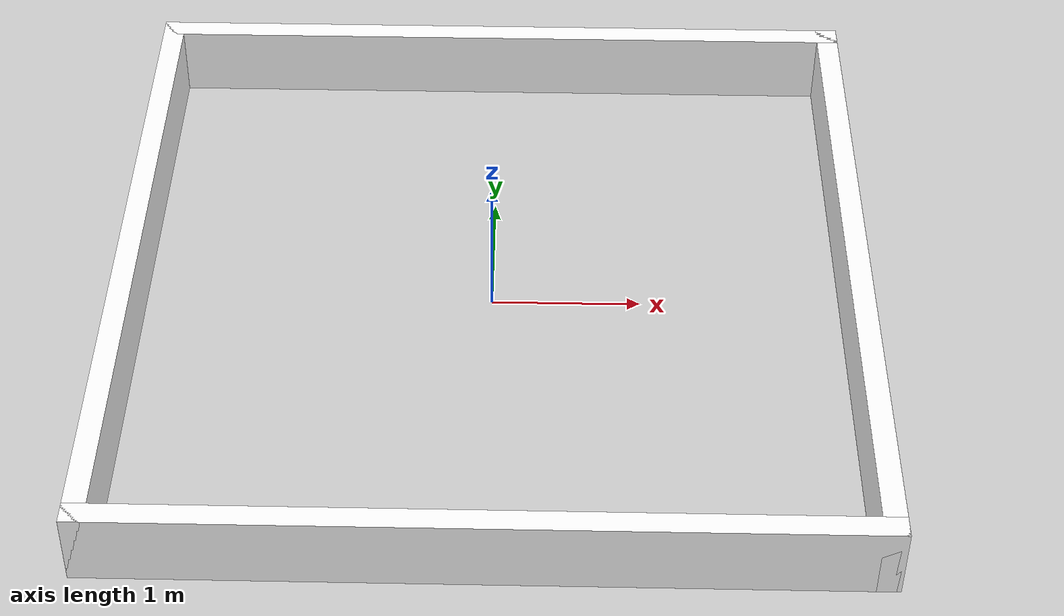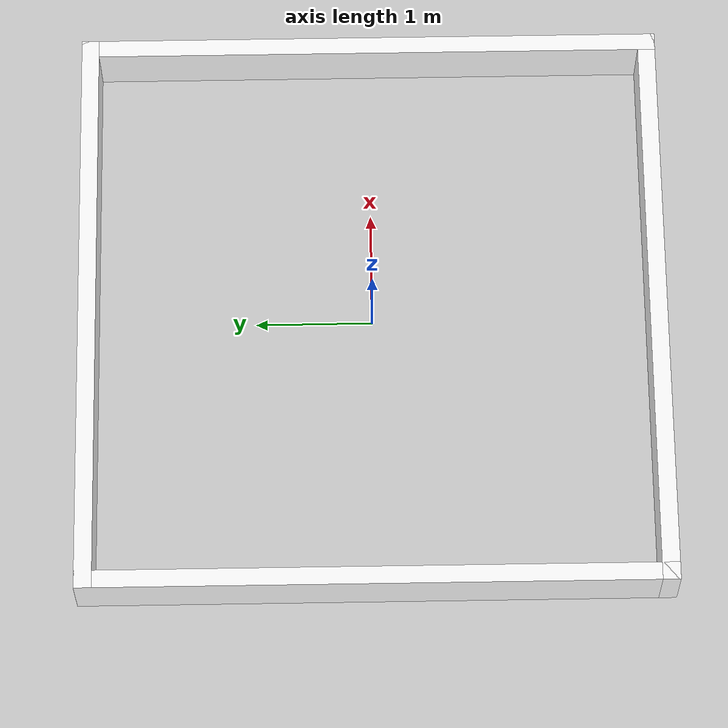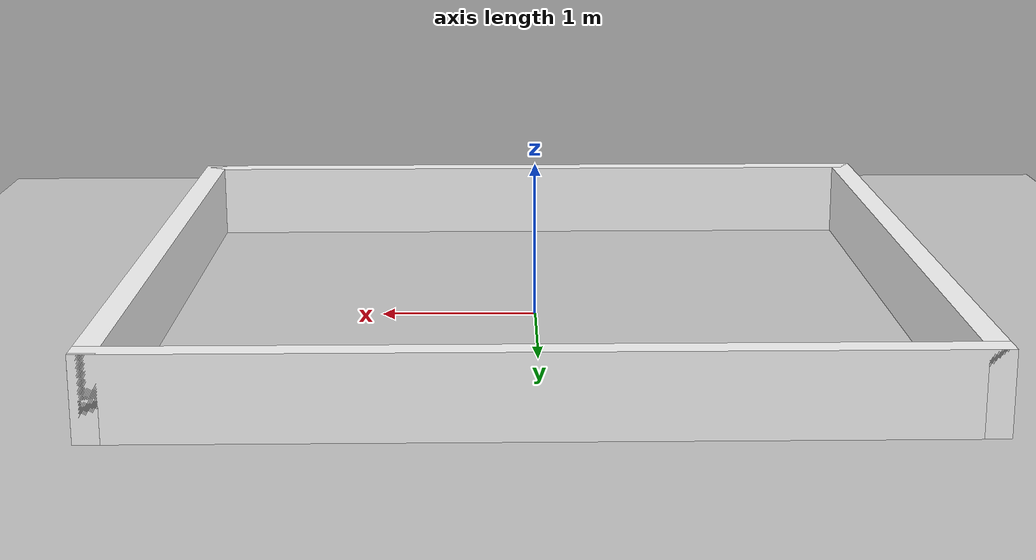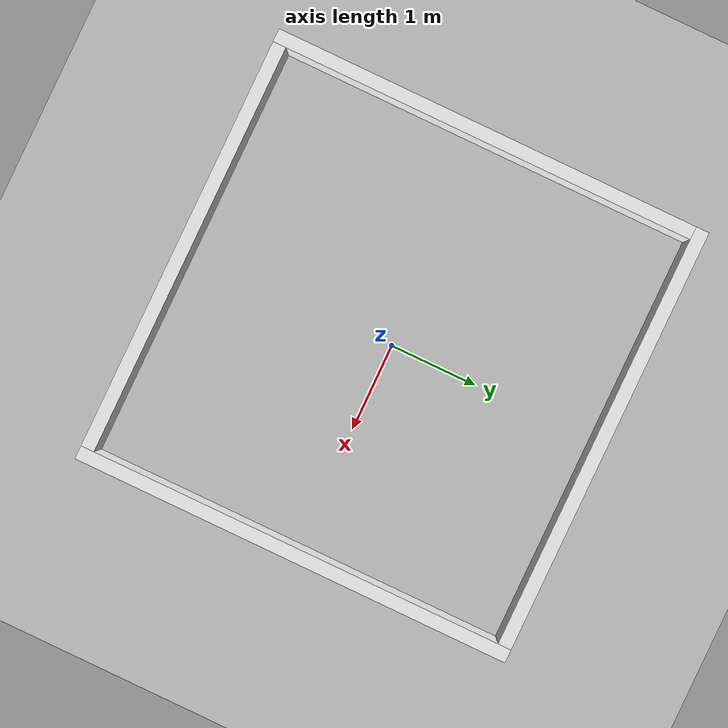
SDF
<?xml version="1.0"?>
<sdf version="1.8">
  <world name="dqn">

    <plugin
      filename="gz-sim-physics-system"
      name="gz::sim::systems::Physics">
    </plugin>
    <plugin
      filename="gz-sim-user-commands-system"
      name="gz::sim::systems::UserCommands">
    </plugin>
    <plugin
      filename="gz-sim-scene-broadcaster-system"
      name="gz::sim::systems::SceneBroadcaster">
    </plugin>
    <plugin
      filename="gz-sim-sensors-system"
      name="gz::sim::systems::Sensors">
      <render_engine>ogre2</render_engine>
    </plugin>

    <physics type="ode">
      <real_time_update_rate>1000.0</real_time_update_rate>
      <max_step_size>0.001</max_step_size>
      <real_time_factor>1</real_time_factor>
      <ode>
        <solver>
          <type>quick</type>
          <iters>150</iters>
          <precon_iters>0</precon_iters>
          <sor>1.400000</sor>
          <use_dynamic_moi_rescaling>1</use_dynamic_moi_rescaling>
        </solver>
        <constraints>
          <cfm>0.00001</cfm>
          <erp>0.2</erp>
          <contact_max_correcting_vel>2000.000000</contact_max_correcting_vel>
          <contact_surface_layer>0.01000</contact_surface_layer>
        </constraints>
      </ode>
    </physics>

    <include>
      <uri>https://fuel.gazebosim.org/1.0/OpenRobotics/models/Ground Plane</uri>
    </include>
    <light type="directional" name="sun">
      <cast_shadows>false</cast_shadows>
      <pose>0 0 10 0 0 0</pose>
      <diffuse>0.8 0.8 0.8 1</diffuse>
      <specular>0.2 0.2 0.2 1</specular>
      <attenuation>
        <range>1000</range>
        <constant>0.9</constant>
        <linear>0.01</linear>
        <quadratic>0.001</quadratic>
      </attenuation>
      <direction>-0.5 0.1 -0.9</direction>
    </light>

      <model name="turtlebot3_dqn_world">
        <static>true</static>
        <include>
          <uri>model://turtlebot3_dqn_world</uri>
        </include>
      </model>

  </world>
</sdf>

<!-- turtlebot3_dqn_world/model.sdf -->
<sdf version='1.8'>
  <model name='turtlebot3_square'>
    <pose>0 0 0 0 0 0</pose>
    <static>true</static>

    <link name='Wall_1'>
      <pose>2.425 0 0.25 0 0 1.5708</pose>
      <collision name='Wall_1_Collision'>
        <geometry>
          <box>
            <size>5 0.15 0.5</size>
          </box>
        </geometry>
      </collision>
      <visual name='Wall_1_Visual'>
        <pose>0 0 0 0 0 0</pose>
        <geometry>
          <box>
            <size>5 0.15 0.5</size>
          </box>
        </geometry>
        <material>
          <pbr>
            <metal>
              <albedo_map>textures/wood.png</albedo_map>
            </metal>
          </pbr>
          <ambient>1 1 1 1</ambient>
          <diffuse>1 1 1 1</diffuse>
          <specular>0.2 0.2 0.2 1</specular>
          <emissive>0 0 0 1</emissive>
        </material>
      </visual>
    </link>

    <link name='Wall_2'>
      <pose>0 2.425 0.25 0 0 0</pose>
      <collision name='Wall_2_Collision'>
        <geometry>
          <box>
            <size>5 0.15 0.5</size>
          </box>
        </geometry>
      </collision>
      <visual name='Wall_2_Visual'>
        <pose>0 0 0 0 0 0</pose>
        <geometry>
          <box>
            <size>5 0.15 0.5</size>
          </box>
        </geometry>
        <material>
          <pbr>
            <metal>
              <albedo_map>textures/wood.png</albedo_map>
            </metal>
          </pbr>
          <ambient>1 1 1 1</ambient>
          <diffuse>1 1 1 1</diffuse>
          <specular>0.2 0.2 0.2 1</specular>
          <emissive>0 0 0 1</emissive>
        </material>
      </visual>
    </link>

    <link name='Wall_3'>
      <pose>-2.425 0 0.25 0 0 1.5708</pose>
      <collision name='Wall_3_Collision'>
        <geometry>
          <box>
            <size>5 0.15 0.5</size>
          </box>
        </geometry>
      </collision>
      <visual name='Wall_3_Visual'>
        <pose>0 0 0 0 0 0</pose>
        <geometry>
          <box>
            <size>5 0.15 0.5</size>
          </box>
        </geometry>
        <material>
          <pbr>
            <metal>
              <albedo_map>textures/wood.png</albedo_map>
            </metal>
          </pbr>
          <ambient>1 1 1 1</ambient>
          <diffuse>1 1 1 1</diffuse>
          <specular>0.2 0.2 0.2 1</specular>
          <emissive>0 0 0 1</emissive>
        </material>
      </visual>
    </link>

    <link name='Wall_4'>
      <pose>0 -2.425 0.25 0 0 0</pose>
      <collision name='Wall_4_Collision'>
        <geometry>
          <box>
            <size>5 0.15 0.5</size>
          </box>
        </geometry>
      </collision>
      <visual name='Wall_4_Visual'>
        <pose>0 0 0 0 0 0</pose>
        <geometry>
          <box>
            <size>5 0.15 0.5</size>
          </box>
        </geometry>
        <material>
          <pbr>
            <metal>
              <albedo_map>textures/wood.png</albedo_map>
            </metal>
          </pbr>
          <ambient>1 1 1 1</ambient>
          <diffuse>1 1 1 1</diffuse>
          <specular>0.2 0.2 0.2 1</specular>
          <emissive>0 0 0 1</emissive>
        </material>
      </visual>
    </link>

  </model>
</sdf>
